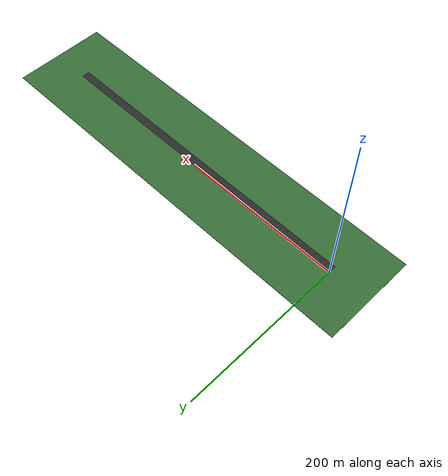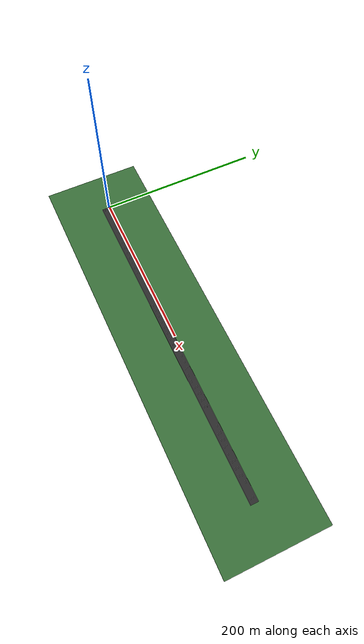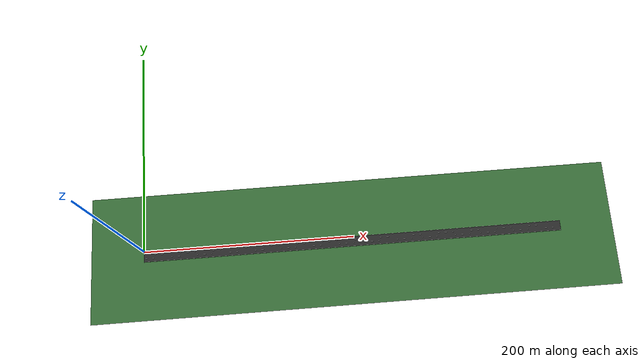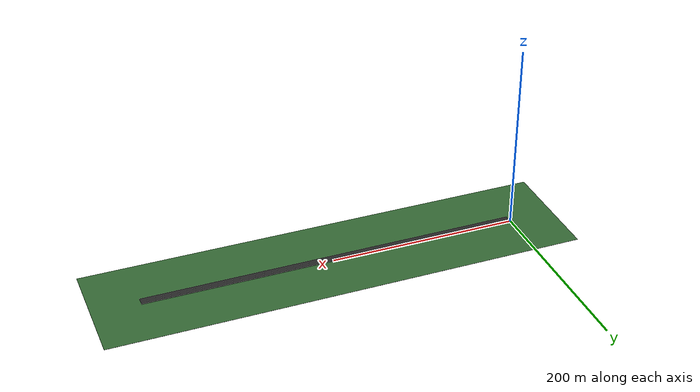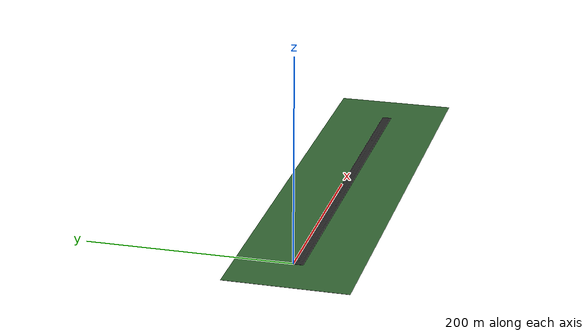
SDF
<sdf version="1.9">
 <world name="cosim_demo">
  <model name="road">
   <static>true</static>
   <link name="visuals">
    <visual name="grass">
     <pose>200.0 -4.8 -0.2 0 0 0</pose>
     <geometry><box><size>500 120 0.2</size></box></geometry>
     <material><ambient>0.2 0.4 0.2 1</ambient><diffuse>0.2 0.4 0.2 1</diffuse></material>
    </visual>
    <visual name="asphalt">
     <pose>200.0 -4.8 -0.05 0 0 0</pose>
     <geometry><box><size>400 9.6 0.1</size></box></geometry>
     <material><ambient>0.15 0.15 0.15 1</ambient><diffuse>0.15 0.15 0.15 1</diffuse></material>
    </visual>
    <visual name="edge_-0.15">
     <pose>200.0 -0.15 0.01 0 0 0</pose>
     <geometry><box><size>400 0.16 0.02</size></box></geometry>
     <material><ambient>1 1 1 1</ambient><diffuse>1 1 1 1</diffuse></material>
    </visual>
    <visual name="edge_-9.45">
     <pose>200.0 -9.45 0.01 0 0 0</pose>
     <geometry><box><size>400 0.16 0.02</size></box></geometry>
     <material><ambient>1 1 1 1</ambient><diffuse>1 1 1 1</diffuse></material>
    </visual>
    <visual name="dash_-3.2_0">
     <pose>1.5 -3.2 0.01 0 0 0</pose>
     <geometry><box><size>3 0.16 0.02</size></box></geometry>
     <material><ambient>1 1 1 1</ambient><diffuse>1 1 1 1</diffuse></material>
    </visual>
    <visual name="dash_-3.2_8">
     <pose>9.5 -3.2 0.01 0 0 0</pose>
     <geometry><box><size>3 0.16 0.02</size></box></geometry>
     <material><ambient>1 1 1 1</ambient><diffuse>1 1 1 1</diffuse></material>
    </visual>
    <visual name="dash_-3.2_16">
     <pose>17.5 -3.2 0.01 0 0 0</pose>
     <geometry><box><size>3 0.16 0.02</size></box></geometry>
     <material><ambient>1 1 1 1</ambient><diffuse>1 1 1 1</diffuse></material>
    </visual>
    <visual name="dash_-3.2_24">
     <pose>25.5 -3.2 0.01 0 0 0</pose>
     <geometry><box><size>3 0.16 0.02</size></box></geometry>
     <material><ambient>1 1 1 1</ambient><diffuse>1 1 1 1</diffuse></material>
    </visual>
    <visual name="dash_-3.2_32">
     <pose>33.5 -3.2 0.01 0 0 0</pose>
     <geometry><box><size>3 0.16 0.02</size></box></geometry>
     <material><ambient>1 1 1 1</ambient><diffuse>1 1 1 1</diffuse></material>
    </visual>
    <visual name="dash_-3.2_40">
     <pose>41.5 -3.2 0.01 0 0 0</pose>
     <geometry><box><size>3 0.16 0.02</size></box></geometry>
     <material><ambient>1 1 1 1</ambient><diffuse>1 1 1 1</diffuse></material>
    </visual>
    <visual name="dash_-3.2_48">
     <pose>49.5 -3.2 0.01 0 0 0</pose>
     <geometry><box><size>3 0.16 0.02</size></box></geometry>
     <material><ambient>1 1 1 1</ambient><diffuse>1 1 1 1</diffuse></material>
    </visual>
    <visual name="dash_-3.2_56">
     <pose>57.5 -3.2 0.01 0 0 0</pose>
     <geometry><box><size>3 0.16 0.02</size></box></geometry>
     <material><ambient>1 1 1 1</ambient><diffuse>1 1 1 1</diffuse></material>
    </visual>
    <visual name="dash_-3.2_64">
     <pose>65.5 -3.2 0.01 0 0 0</pose>
     <geometry><box><size>3 0.16 0.02</size></box></geometry>
     <material><ambient>1 1 1 1</ambient><diffuse>1 1 1 1</diffuse></material>
    </visual>
    <visual name="dash_-3.2_72">
     <pose>73.5 -3.2 0.01 0 0 0</pose>
     <geometry><box><size>3 0.16 0.02</size></box></geometry>
     <material><ambient>1 1 1 1</ambient><diffuse>1 1 1 1</diffuse></material>
    </visual>
    <visual name="dash_-3.2_80">
     <pose>81.5 -3.2 0.01 0 0 0</pose>
     <geometry><box><size>3 0.16 0.02</size></box></geometry>
     <material><ambient>1 1 1 1</ambient><diffuse>1 1 1 1</diffuse></material>
    </visual>
    <visual name="dash_-3.2_88">
     <pose>89.5 -3.2 0.01 0 0 0</pose>
     <geometry><box><size>3 0.16 0.02</size></box></geometry>
     <material><ambient>1 1 1 1</ambient><diffuse>1 1 1 1</diffuse></material>
    </visual>
    <visual name="dash_-3.2_96">
     <pose>97.5 -3.2 0.01 0 0 0</pose>
     <geometry><box><size>3 0.16 0.02</size></box></geometry>
     <material><ambient>1 1 1 1</ambient><diffuse>1 1 1 1</diffuse></material>
    </visual>
    <visual name="dash_-3.2_104">
     <pose>105.5 -3.2 0.01 0 0 0</pose>
     <geometry><box><size>3 0.16 0.02</size></box></geometry>
     <material><ambient>1 1 1 1</ambient><diffuse>1 1 1 1</diffuse></material>
    </visual>
    <visual name="dash_-3.2_112">
     <pose>113.5 -3.2 0.01 0 0 0</pose>
     <geometry><box><size>3 0.16 0.02</size></box></geometry>
     <material><ambient>1 1 1 1</ambient><diffuse>1 1 1 1</diffuse></material>
    </visual>
    <visual name="dash_-3.2_120">
     <pose>121.5 -3.2 0.01 0 0 0</pose>
     <geometry><box><size>3 0.16 0.02</size></box></geometry>
     <material><ambient>1 1 1 1</ambient><diffuse>1 1 1 1</diffuse></material>
    </visual>
    <visual name="dash_-3.2_128">
     <pose>129.5 -3.2 0.01 0 0 0</pose>
     <geometry><box><size>3 0.16 0.02</size></box></geometry>
     <material><ambient>1 1 1 1</ambient><diffuse>1 1 1 1</diffuse></material>
    </visual>
    <visual name="dash_-3.2_136">
     <pose>137.5 -3.2 0.01 0 0 0</pose>
     <geometry><box><size>3 0.16 0.02</size></box></geometry>
     <material><ambient>1 1 1 1</ambient><diffuse>1 1 1 1</diffuse></material>
    </visual>
    <visual name="dash_-3.2_144">
     <pose>145.5 -3.2 0.01 0 0 0</pose>
     <geometry><box><size>3 0.16 0.02</size></box></geometry>
     <material><ambient>1 1 1 1</ambient><diffuse>1 1 1 1</diffuse></material>
    </visual>
    <visual name="dash_-3.2_152">
     <pose>153.5 -3.2 0.01 0 0 0</pose>
     <geometry><box><size>3 0.16 0.02</size></box></geometry>
     <material><ambient>1 1 1 1</ambient><diffuse>1 1 1 1</diffuse></material>
    </visual>
    <visual name="dash_-3.2_160">
     <pose>161.5 -3.2 0.01 0 0 0</pose>
     <geometry><box><size>3 0.16 0.02</size></box></geometry>
     <material><ambient>1 1 1 1</ambient><diffuse>1 1 1 1</diffuse></material>
    </visual>
    <visual name="dash_-3.2_168">
     <pose>169.5 -3.2 0.01 0 0 0</pose>
     <geometry><box><size>3 0.16 0.02</size></box></geometry>
     <material><ambient>1 1 1 1</ambient><diffuse>1 1 1 1</diffuse></material>
    </visual>
    <visual name="dash_-3.2_176">
     <pose>177.5 -3.2 0.01 0 0 0</pose>
     <geometry><box><size>3 0.16 0.02</size></box></geometry>
     <material><ambient>1 1 1 1</ambient><diffuse>1 1 1 1</diffuse></material>
    </visual>
    <visual name="dash_-3.2_184">
     <pose>185.5 -3.2 0.01 0 0 0</pose>
     <geometry><box><size>3 0.16 0.02</size></box></geometry>
     <material><ambient>1 1 1 1</ambient><diffuse>1 1 1 1</diffuse></material>
    </visual>
    <visual name="dash_-3.2_192">
     <pose>193.5 -3.2 0.01 0 0 0</pose>
     <geometry><box><size>3 0.16 0.02</size></box></geometry>
     <material><ambient>1 1 1 1</ambient><diffuse>1 1 1 1</diffuse></material>
    </visual>
    <visual name="dash_-3.2_200">
     <pose>201.5 -3.2 0.01 0 0 0</pose>
     <geometry><box><size>3 0.16 0.02</size></box></geometry>
     <material><ambient>1 1 1 1</ambient><diffuse>1 1 1 1</diffuse></material>
    </visual>
    <visual name="dash_-3.2_208">
     <pose>209.5 -3.2 0.01 0 0 0</pose>
     <geometry><box><size>3 0.16 0.02</size></box></geometry>
     <material><ambient>1 1 1 1</ambient><diffuse>1 1 1 1</diffuse></material>
    </visual>
    <visual name="dash_-3.2_216">
     <pose>217.5 -3.2 0.01 0 0 0</pose>
     <geometry><box><size>3 0.16 0.02</size></box></geometry>
     <material><ambient>1 1 1 1</ambient><diffuse>1 1 1 1</diffuse></material>
    </visual>
    <visual name="dash_-3.2_224">
     <pose>225.5 -3.2 0.01 0 0 0</pose>
     <geometry><box><size>3 0.16 0.02</size></box></geometry>
     <material><ambient>1 1 1 1</ambient><diffuse>1 1 1 1</diffuse></material>
    </visual>
    <visual name="dash_-3.2_232">
     <pose>233.5 -3.2 0.01 0 0 0</pose>
     <geometry><box><size>3 0.16 0.02</size></box></geometry>
     <material><ambient>1 1 1 1</ambient><diffuse>1 1 1 1</diffuse></material>
    </visual>
    <visual name="dash_-3.2_240">
     <pose>241.5 -3.2 0.01 0 0 0</pose>
     <geometry><box><size>3 0.16 0.02</size></box></geometry>
     <material><ambient>1 1 1 1</ambient><diffuse>1 1 1 1</diffuse></material>
    </visual>
    <visual name="dash_-3.2_248">
     <pose>249.5 -3.2 0.01 0 0 0</pose>
     <geometry><box><size>3 0.16 0.02</size></box></geometry>
     <material><ambient>1 1 1 1</ambient><diffuse>1 1 1 1</diffuse></material>
    </visual>
    <visual name="dash_-3.2_256">
     <pose>257.5 -3.2 0.01 0 0 0</pose>
     <geometry><box><size>3 0.16 0.02</size></box></geometry>
     <material><ambient>1 1 1 1</ambient><diffuse>1 1 1 1</diffuse></material>
    </visual>
    <visual name="dash_-3.2_264">
     <pose>265.5 -3.2 0.01 0 0 0</pose>
     <geometry><box><size>3 0.16 0.02</size></box></geometry>
     <material><ambient>1 1 1 1</ambient><diffuse>1 1 1 1</diffuse></material>
    </visual>
    <visual name="dash_-3.2_272">
     <pose>273.5 -3.2 0.01 0 0 0</pose>
     <geometry><box><size>3 0.16 0.02</size></box></geometry>
     <material><ambient>1 1 1 1</ambient><diffuse>1 1 1 1</diffuse></material>
    </visual>
    <visual name="dash_-3.2_280">
     <pose>281.5 -3.2 0.01 0 0 0</pose>
     <geometry><box><size>3 0.16 0.02</size></box></geometry>
     <material><ambient>1 1 1 1</ambient><diffuse>1 1 1 1</diffuse></material>
    </visual>
    <visual name="dash_-3.2_288">
     <pose>289.5 -3.2 0.01 0 0 0</pose>
     <geometry><box><size>3 0.16 0.02</size></box></geometry>
     <material><ambient>1 1 1 1</ambient><diffuse>1 1 1 1</diffuse></material>
    </visual>
    <visual name="dash_-3.2_296">
     <pose>297.5 -3.2 0.01 0 0 0</pose>
     <geometry><box><size>3 0.16 0.02</size></box></geometry>
     <material><ambient>1 1 1 1</ambient><diffuse>1 1 1 1</diffuse></material>
    </visual>
    <visual name="dash_-3.2_304">
     <pose>305.5 -3.2 0.01 0 0 0</pose>
     <geometry><box><size>3 0.16 0.02</size></box></geometry>
     <material><ambient>1 1 1 1</ambient><diffuse>1 1 1 1</diffuse></material>
    </visual>
    <visual name="dash_-3.2_312">
     <pose>313.5 -3.2 0.01 0 0 0</pose>
     <geometry><box><size>3 0.16 0.02</size></box></geometry>
     <material><ambient>1 1 1 1</ambient><diffuse>1 1 1 1</diffuse></material>
    </visual>
    <visual name="dash_-3.2_320">
     <pose>321.5 -3.2 0.01 0 0 0</pose>
     <geometry><box><size>3 0.16 0.02</size></box></geometry>
     <material><ambient>1 1 1 1</ambient><diffuse>1 1 1 1</diffuse></material>
    </visual>
    <visual name="dash_-3.2_328">
     <pose>329.5 -3.2 0.01 0 0 0</pose>
     <geometry><box><size>3 0.16 0.02</size></box></geometry>
     <material><ambient>1 1 1 1</ambient><diffuse>1 1 1 1</diffuse></material>
    </visual>
    <visual name="dash_-3.2_336">
     <pose>337.5 -3.2 0.01 0 0 0</pose>
     <geometry><box><size>3 0.16 0.02</size></box></geometry>
     <material><ambient>1 1 1 1</ambient><diffuse>1 1 1 1</diffuse></material>
    </visual>
    <visual name="dash_-3.2_344">
     <pose>345.5 -3.2 0.01 0 0 0</pose>
     <geometry><box><size>3 0.16 0.02</size></box></geometry>
     <material><ambient>1 1 1 1</ambient><diffuse>1 1 1 1</diffuse></material>
    </visual>
    <visual name="dash_-3.2_352">
     <pose>353.5 -3.2 0.01 0 0 0</pose>
     <geometry><box><size>3 0.16 0.02</size></box></geometry>
     <material><ambient>1 1 1 1</ambient><diffuse>1 1 1 1</diffuse></material>
    </visual>
    <visual name="dash_-3.2_360">
     <pose>361.5 -3.2 0.01 0 0 0</pose>
     <geometry><box><size>3 0.16 0.02</size></box></geometry>
     <material><ambient>1 1 1 1</ambient><diffuse>1 1 1 1</diffuse></material>
    </visual>
    <visual name="dash_-3.2_368">
     <pose>369.5 -3.2 0.01 0 0 0</pose>
     <geometry><box><size>3 0.16 0.02</size></box></geometry>
     <material><ambient>1 1 1 1</ambient><diffuse>1 1 1 1</diffuse></material>
    </visual>
    <visual name="dash_-3.2_376">
     <pose>377.5 -3.2 0.01 0 0 0</pose>
     <geometry><box><size>3 0.16 0.02</size></box></geometry>
     <material><ambient>1 1 1 1</ambient><diffuse>1 1 1 1</diffuse></material>
    </visual>
    <visual name="dash_-3.2_384">
     <pose>385.5 -3.2 0.01 0 0 0</pose>
     <geometry><box><size>3 0.16 0.02</size></box></geometry>
     <material><ambient>1 1 1 1</ambient><diffuse>1 1 1 1</diffuse></material>
    </visual>
    <visual name="dash_-3.2_392">
     <pose>393.5 -3.2 0.01 0 0 0</pose>
     <geometry><box><size>3 0.16 0.02</size></box></geometry>
     <material><ambient>1 1 1 1</ambient><diffuse>1 1 1 1</diffuse></material>
    </visual>
    <visual name="dash_-6.4_0">
     <pose>1.5 -6.4 0.01 0 0 0</pose>
     <geometry><box><size>3 0.16 0.02</size></box></geometry>
     <material><ambient>1 1 1 1</ambient><diffuse>1 1 1 1</diffuse></material>
    </visual>
    <visual name="dash_-6.4_8">
     <pose>9.5 -6.4 0.01 0 0 0</pose>
     <geometry><box><size>3 0.16 0.02</size></box></geometry>
     <material><ambient>1 1 1 1</ambient><diffuse>1 1 1 1</diffuse></material>
    </visual>
    <visual name="dash_-6.4_16">
     <pose>17.5 -6.4 0.01 0 0 0</pose>
     <geometry><box><size>3 0.16 0.02</size></box></geometry>
     <material><ambient>1 1 1 1</ambient><diffuse>1 1 1 1</diffuse></material>
    </visual>
    <visual name="dash_-6.4_24">
     <pose>25.5 -6.4 0.01 0 0 0</pose>
     <geometry><box><size>3 0.16 0.02</size></box></geometry>
     <material><ambient>1 1 1 1</ambient><diffuse>1 1 1 1</diffuse></material>
    </visual>
    <visual name="dash_-6.4_32">
     <pose>33.5 -6.4 0.01 0 0 0</pose>
     <geometry><box><size>3 0.16 0.02</size></box></geometry>
     <material><ambient>1 1 1 1</ambient><diffuse>1 1 1 1</diffuse></material>
    </visual>
    <visual name="dash_-6.4_40">
     <pose>41.5 -6.4 0.01 0 0 0</pose>
     <geometry><box><size>3 0.16 0.02</size></box></geometry>
     <material><ambient>1 1 1 1</ambient><diffuse>1 1 1 1</diffuse></material>
    </visual>
    <visual name="dash_-6.4_48">
     <pose>49.5 -6.4 0.01 0 0 0</pose>
     <geometry><box><size>3 0.16 0.02</size></box></geometry>
     <material><ambient>1 1 1 1</ambient><diffuse>1 1 1 1</diffuse></material>
    </visual>
    <visual name="dash_-6.4_56">
     <pose>57.5 -6.4 0.01 0 0 0</pose>
     <geometry><box><size>3 0.16 0.02</size></box></geometry>
     <material><ambient>1 1 1 1</ambient><diffuse>1 1 1 1</diffuse></material>
    </visual>
    <visual name="dash_-6.4_64">
     <pose>65.5 -6.4 0.01 0 0 0</pose>
     <geometry><box><size>3 0.16 0.02</size></box></geometry>
     <material><ambient>1 1 1 1</ambient><diffuse>1 1 1 1</diffuse></material>
    </visual>
    <visual name="dash_-6.4_72">
     <pose>73.5 -6.4 0.01 0 0 0</pose>
     <geometry><box><size>3 0.16 0.02</size></box></geometry>
     <material><ambient>1 1 1 1</ambient><diffuse>1 1 1 1</diffuse></material>
    </visual>
    <visual name="dash_-6.4_80">
     <pose>81.5 -6.4 0.01 0 0 0</pose>
     <geometry><box><size>3 0.16 0.02</size></box></geometry>
     <material><ambient>1 1 1 1</ambient><diffuse>1 1 1 1</diffuse></material>
    </visual>
    <visual name="dash_-6.4_88">
     <pose>89.5 -6.4 0.01 0 0 0</pose>
     <geometry><box><size>3 0.16 0.02</size></box></geometry>
     <material><ambient>1 1 1 1</ambient><diffuse>1 1 1 1</diffuse></material>
    </visual>
    <visual name="dash_-6.4_96">
     <pose>97.5 -6.4 0.01 0 0 0</pose>
     <geometry><box><size>3 0.16 0.02</size></box></geometry>
     <material><ambient>1 1 1 1</ambient><diffuse>1 1 1 1</diffuse></material>
    </visual>
    <visual name="dash_-6.4_104">
     <pose>105.5 -6.4 0.01 0 0 0</pose>
     <geometry><box><size>3 0.16 0.02</size></box></geometry>
     <material><ambient>1 1 1 1</ambient><diffuse>1 1 1 1</diffuse></material>
    </visual>
    <visual name="dash_-6.4_112">
     <pose>113.5 -6.4 0.01 0 0 0</pose>
     <geometry><box><size>3 0.16 0.02</size></box></geometry>
     <material><ambient>1 1 1 1</ambient><diffuse>1 1 1 1</diffuse></material>
    </visual>
    <visual name="dash_-6.4_120">
     <pose>121.5 -6.4 0.01 0 0 0</pose>
     <geometry><box><size>3 0.16 0.02</size></box></geometry>
     <material><ambient>1 1 1 1</ambient><diffuse>1 1 1 1</diffuse></material>
    </visual>
    <visual name="dash_-6.4_128">
     <pose>129.5 -6.4 0.01 0 0 0</pose>
     <geometry><box><size>3 0.16 0.02</size></box></geometry>
     <material><ambient>1 1 1 1</ambient><diffuse>1 1 1 1</diffuse></material>
    </visual>
    <visual name="dash_-6.4_136">
     <pose>137.5 -6.4 0.01 0 0 0</pose>
     <geometry><box><size>3 0.16 0.02</size></box></geometry>
     <material><ambient>1 1 1 1</ambient><diffuse>1 1 1 1</diffuse></material>
    </visual>
    <visual name="dash_-6.4_144">
     <pose>145.5 -6.4 0.01 0 0 0</pose>
     <geometry><box><size>3 0.16 0.02</size></box></geometry>
     <material><ambient>1 1 1 1</ambient><diffuse>1 1 1 1</diffuse></material>
    </visual>
    <visual name="dash_-6.4_152">
     <pose>153.5 -6.4 0.01 0 0 0</pose>
     <geometry><box><size>3 0.16 0.02</size></box></geometry>
     <material><ambient>1 1 1 1</ambient><diffuse>1 1 1 1</diffuse></material>
    </visual>
    <visual name="dash_-6.4_160">
     <pose>161.5 -6.4 0.01 0 0 0</pose>
     <geometry><box><size>3 0.16 0.02</size></box></geometry>
     <material><ambient>1 1 1 1</ambient><diffuse>1 1 1 1</diffuse></material>
    </visual>
    <visual name="dash_-6.4_168">
     <pose>169.5 -6.4 0.01 0 0 0</pose>
     <geometry><box><size>3 0.16 0.02</size></box></geometry>
     <material><ambient>1 1 1 1</ambient><diffuse>1 1 1 1</diffuse></material>
    </visual>
    <visual name="dash_-6.4_176">
     <pose>177.5 -6.4 0.01 0 0 0</pose>
     <geometry><box><size>3 0.16 0.02</size></box></geometry>
     <material><ambient>1 1 1 1</ambient><diffuse>1 1 1 1</diffuse></material>
    </visual>
    <visual name="dash_-6.4_184">
     <pose>185.5 -6.4 0.01 0 0 0</pose>
     <geometry><box><size>3 0.16 0.02</size></box></geometry>
     <material><ambient>1 1 1 1</ambient><diffuse>1 1 1 1</diffuse></material>
    </visual>
    <visual name="dash_-6.4_192">
     <pose>193.5 -6.4 0.01 0 0 0</pose>
     <geometry><box><size>3 0.16 0.02</size></box></geometry>
     <material><ambient>1 1 1 1</ambient><diffuse>1 1 1 1</diffuse></material>
    </visual>
    <visual name="dash_-6.4_200">
     <pose>201.5 -6.4 0.01 0 0 0</pose>
     <geometry><box><size>3 0.16 0.02</size></box></geometry>
     <material><ambient>1 1 1 1</ambient><diffuse>1 1 1 1</diffuse></material>
    </visual>
    <visual name="dash_-6.4_208">
     <pose>209.5 -6.4 0.01 0 0 0</pose>
     <geometry><box><size>3 0.16 0.02</size></box></geometry>
     <material><ambient>1 1 1 1</ambient><diffuse>1 1 1 1</diffuse></material>
    </visual>
    <visual name="dash_-6.4_216">
     <pose>217.5 -6.4 0.01 0 0 0</pose>
     <geometry><box><size>3 0.16 0.02</size></box></geometry>
     <material><ambient>1 1 1 1</ambient><diffuse>1 1 1 1</diffuse></material>
    </visual>
    <visual name="dash_-6.4_224">
     <pose>225.5 -6.4 0.01 0 0 0</pose>
     <geometry><box><size>3 0.16 0.02</size></box></geometry>
     <material><ambient>1 1 1 1</ambient><diffuse>1 1 1 1</diffuse></material>
    </visual>
    <visual name="dash_-6.4_232">
     <pose>233.5 -6.4 0.01 0 0 0</pose>
     <geometry><box><size>3 0.16 0.02</size></box></geometry>
     <material><ambient>1 1 1 1</ambient><diffuse>1 1 1 1</diffuse></material>
    </visual>
    <visual name="dash_-6.4_240">
     <pose>241.5 -6.4 0.01 0 0 0</pose>
     <geometry><box><size>3 0.16 0.02</size></box></geometry>
     <material><ambient>1 1 1 1</ambient><diffuse>1 1 1 1</diffuse></material>
    </visual>
    <visual name="dash_-6.4_248">
     <pose>249.5 -6.4 0.01 0 0 0</pose>
     <geometry><box><size>3 0.16 0.02</size></box></geometry>
     <material><ambient>1 1 1 1</ambient><diffuse>1 1 1 1</diffuse></material>
    </visual>
    <visual name="dash_-6.4_256">
     <pose>257.5 -6.4 0.01 0 0 0</pose>
     <geometry><box><size>3 0.16 0.02</size></box></geometry>
     <material><ambient>1 1 1 1</ambient><diffuse>1 1 1 1</diffuse></material>
    </visual>
    <visual name="dash_-6.4_264">
     <pose>265.5 -6.4 0.01 0 0 0</pose>
     <geometry><box><size>3 0.16 0.02</size></box></geometry>
     <material><ambient>1 1 1 1</ambient><diffuse>1 1 1 1</diffuse></material>
    </visual>
    <visual name="dash_-6.4_272">
     <pose>273.5 -6.4 0.01 0 0 0</pose>
     <geometry><box><size>3 0.16 0.02</size></box></geometry>
     <material><ambient>1 1 1 1</ambient><diffuse>1 1 1 1</diffuse></material>
    </visual>
    <visual name="dash_-6.4_280">
     <pose>281.5 -6.4 0.01 0 0 0</pose>
     <geometry><box><size>3 0.16 0.02</size></box></geometry>
     <material><ambient>1 1 1 1</ambient><diffuse>1 1 1 1</diffuse></material>
    </visual>
    <visual name="dash_-6.4_288">
     <pose>289.5 -6.4 0.01 0 0 0</pose>
     <geometry><box><size>3 0.16 0.02</size></box></geometry>
     <material><ambient>1 1 1 1</ambient><diffuse>1 1 1 1</diffuse></material>
    </visual>
    <visual name="dash_-6.4_296">
     <pose>297.5 -6.4 0.01 0 0 0</pose>
     <geometry><box><size>3 0.16 0.02</size></box></geometry>
     <material><ambient>1 1 1 1</ambient><diffuse>1 1 1 1</diffuse></material>
    </visual>
    <visual name="dash_-6.4_304">
     <pose>305.5 -6.4 0.01 0 0 0</pose>
     <geometry><box><size>3 0.16 0.02</size></box></geometry>
     <material><ambient>1 1 1 1</ambient><diffuse>1 1 1 1</diffuse></material>
    </visual>
    <visual name="dash_-6.4_312">
     <pose>313.5 -6.4 0.01 0 0 0</pose>
     <geometry><box><size>3 0.16 0.02</size></box></geometry>
     <material><ambient>1 1 1 1</ambient><diffuse>1 1 1 1</diffuse></material>
    </visual>
    <visual name="dash_-6.4_320">
     <pose>321.5 -6.4 0.01 0 0 0</pose>
     <geometry><box><size>3 0.16 0.02</size></box></geometry>
     <material><ambient>1 1 1 1</ambient><diffuse>1 1 1 1</diffuse></material>
    </visual>
    <visual name="dash_-6.4_328">
     <pose>329.5 -6.4 0.01 0 0 0</pose>
     <geometry><box><size>3 0.16 0.02</size></box></geometry>
     <material><ambient>1 1 1 1</ambient><diffuse>1 1 1 1</diffuse></material>
    </visual>
    <visual name="dash_-6.4_336">
     <pose>337.5 -6.4 0.01 0 0 0</pose>
     <geometry><box><size>3 0.16 0.02</size></box></geometry>
     <material><ambient>1 1 1 1</ambient><diffuse>1 1 1 1</diffuse></material>
    </visual>
    <visual name="dash_-6.4_344">
     <pose>345.5 -6.4 0.01 0 0 0</pose>
     <geometry><box><size>3 0.16 0.02</size></box></geometry>
     <material><ambient>1 1 1 1</ambient><diffuse>1 1 1 1</diffuse></material>
    </visual>
    <visual name="dash_-6.4_352">
     <pose>353.5 -6.4 0.01 0 0 0</pose>
     <geometry><box><size>3 0.16 0.02</size></box></geometry>
     <material><ambient>1 1 1 1</ambient><diffuse>1 1 1 1</diffuse></material>
    </visual>
    <visual name="dash_-6.4_360">
     <pose>361.5 -6.4 0.01 0 0 0</pose>
     <geometry><box><size>3 0.16 0.02</size></box></geometry>
     <material><ambient>1 1 1 1</ambient><diffuse>1 1 1 1</diffuse></material>
    </visual>
    <visual name="dash_-6.4_368">
     <pose>369.5 -6.4 0.01 0 0 0</pose>
     <geometry><box><size>3 0.16 0.02</size></box></geometry>
     <material><ambient>1 1 1 1</ambient><diffuse>1 1 1 1</diffuse></material>
    </visual>
    <visual name="dash_-6.4_376">
     <pose>377.5 -6.4 0.01 0 0 0</pose>
     <geometry><box><size>3 0.16 0.02</size></box></geometry>
     <material><ambient>1 1 1 1</ambient><diffuse>1 1 1 1</diffuse></material>
    </visual>
    <visual name="dash_-6.4_384">
     <pose>385.5 -6.4 0.01 0 0 0</pose>
     <geometry><box><size>3 0.16 0.02</size></box></geometry>
     <material><ambient>1 1 1 1</ambient><diffuse>1 1 1 1</diffuse></material>
    </visual>
    <visual name="dash_-6.4_392">
     <pose>393.5 -6.4 0.01 0 0 0</pose>
     <geometry><box><size>3 0.16 0.02</size></box></geometry>
     <material><ambient>1 1 1 1</ambient><diffuse>1 1 1 1</diffuse></material>
    </visual>
   </link>
  </model>
 </world>
</sdf>
